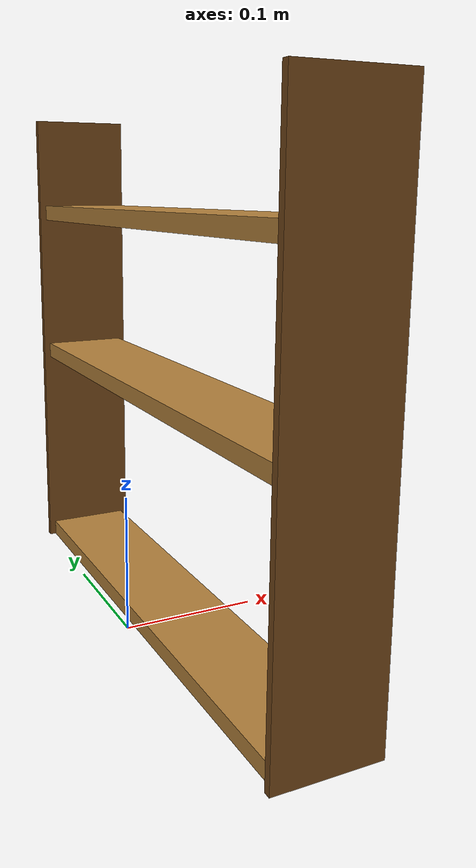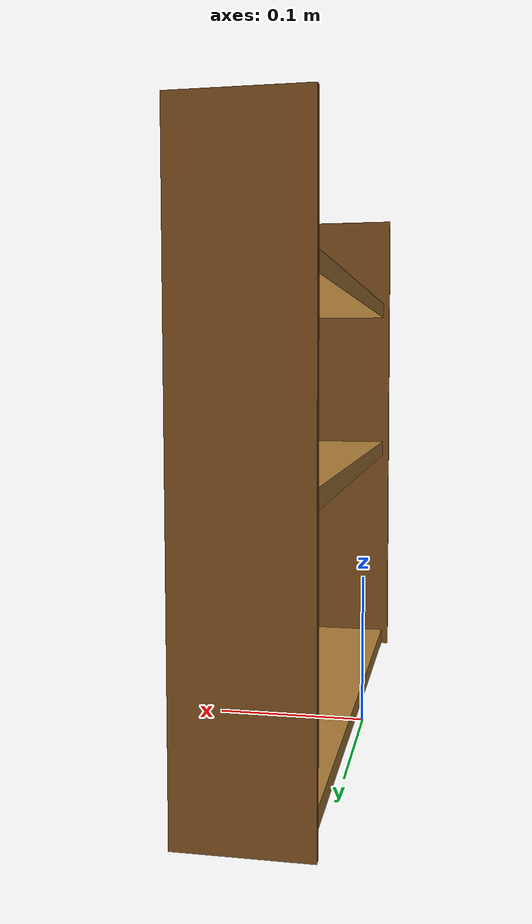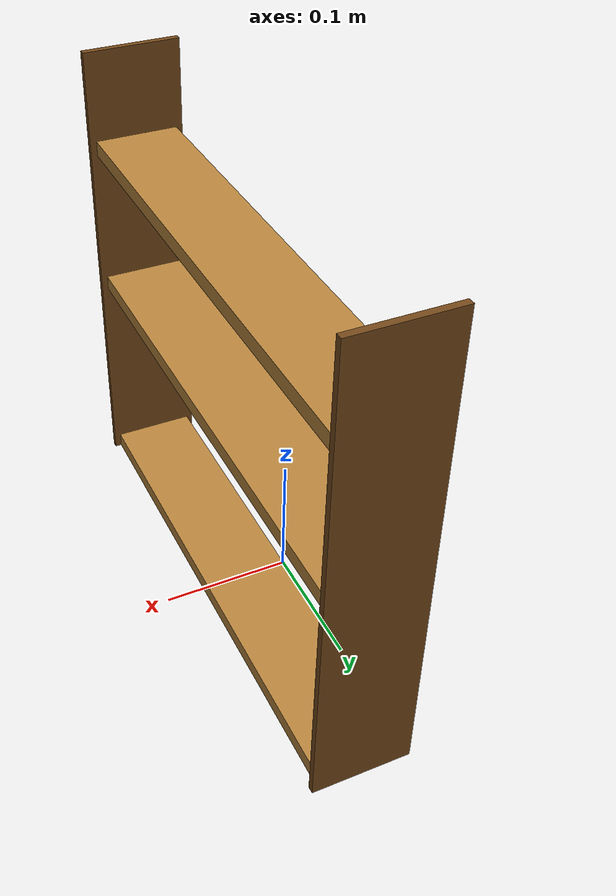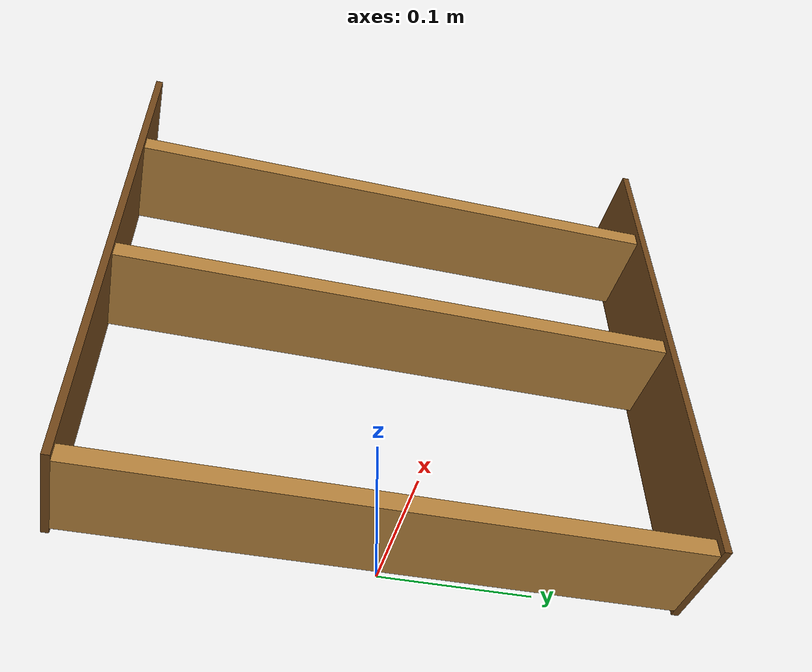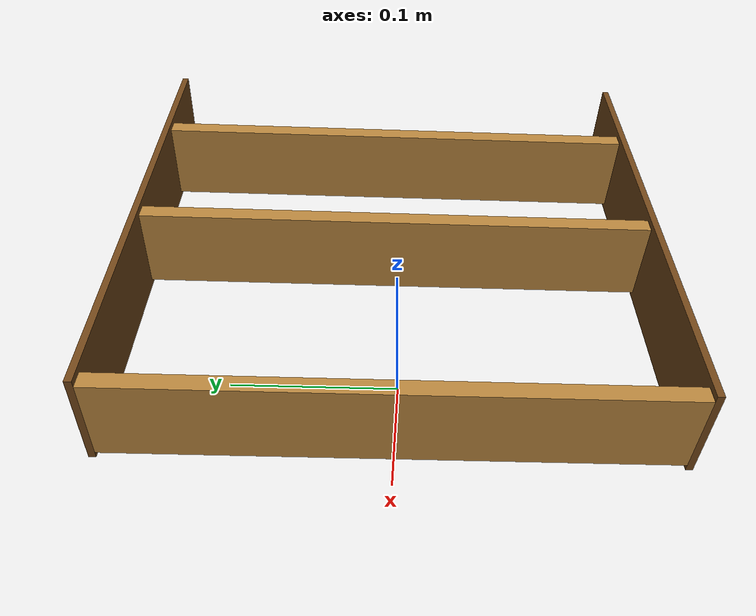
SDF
<?xml version="1.0" ?>
<sdf version="1.6">
  <model name="medicine_shelf">
    <static>true</static>
    <link name="link">

      <!-- Left side wall  (dark walnut) -->
      <collision name="left_col">
        <pose>0.0375 0.1975 0.185 0 0 0</pose>
        <geometry><box><size>0.075 0.005 0.37</size></box></geometry>
      </collision>
      <visual name="left_vis">
        <pose>0.0375 0.1975 0.185 0 0 0</pose>
        <geometry><box><size>0.075 0.005 0.37</size></box></geometry>
        <material>
          <ambient>0.38 0.22 0.08 1</ambient>
          <diffuse>0.45 0.28 0.10 1</diffuse>
          <specular>0.08 0.05 0.02 1</specular>
        </material>
      </visual>

      <!-- Right side wall  (dark walnut) -->
      <collision name="right_col">
        <pose>0.0375 -0.1975 0.185 0 0 0</pose>
        <geometry><box><size>0.075 0.005 0.37</size></box></geometry>
      </collision>
      <visual name="right_vis">
        <pose>0.0375 -0.1975 0.185 0 0 0</pose>
        <geometry><box><size>0.075 0.005 0.37</size></box></geometry>
        <material>
          <ambient>0.38 0.22 0.08 1</ambient>
          <diffuse>0.45 0.28 0.10 1</diffuse>
          <specular>0.08 0.05 0.02 1</specular>
        </material>
      </visual>

      <!-- Bottom base board  (lighter pine) -->
      <collision name="base_col">
        <pose>0.0375 0 0.006 0 0 0</pose>
        <geometry><box><size>0.065 0.39 0.012</size></box></geometry>
      </collision>
      <visual name="base_vis">
        <pose>0.0375 0 0.006 0 0 0</pose>
        <geometry><box><size>0.065 0.39 0.012</size></box></geometry>
        <material>
          <ambient>0.62 0.42 0.18 1</ambient>
          <diffuse>0.72 0.52 0.24 1</diffuse>
          <specular>0.08 0.06 0.03 1</specular>
        </material>
      </visual>

      <!-- Lower shelf board  (top at local z = 0.18)  lighter pine -->
      <collision name="shelf_low_col">
        <pose>0.0375 0 0.174 0 0 0</pose>
        <geometry><box><size>0.065 0.39 0.012</size></box></geometry>
      </collision>
      <visual name="shelf_low_vis">
        <pose>0.0375 0 0.174 0 0 0</pose>
        <geometry><box><size>0.065 0.39 0.012</size></box></geometry>
        <material>
          <ambient>0.62 0.42 0.18 1</ambient>
          <diffuse>0.72 0.52 0.24 1</diffuse>
          <specular>0.08 0.06 0.03 1</specular>
        </material>
      </visual>

      <!-- Upper shelf board  (top at local z = 0.30)  lighter pine -->
      <collision name="shelf_top_col">
        <pose>0.0375 0 0.294 0 0 0</pose>
        <geometry><box><size>0.065 0.39 0.012</size></box></geometry>
      </collision>
      <visual name="shelf_top_vis">
        <pose>0.0375 0 0.294 0 0 0</pose>
        <geometry><box><size>0.065 0.39 0.012</size></box></geometry>
        <material>
          <ambient>0.62 0.42 0.18 1</ambient>
          <diffuse>0.72 0.52 0.24 1</diffuse>
          <specular>0.08 0.06 0.03 1</specular>
        </material>
      </visual>

    </link>
  </model>
</sdf>
